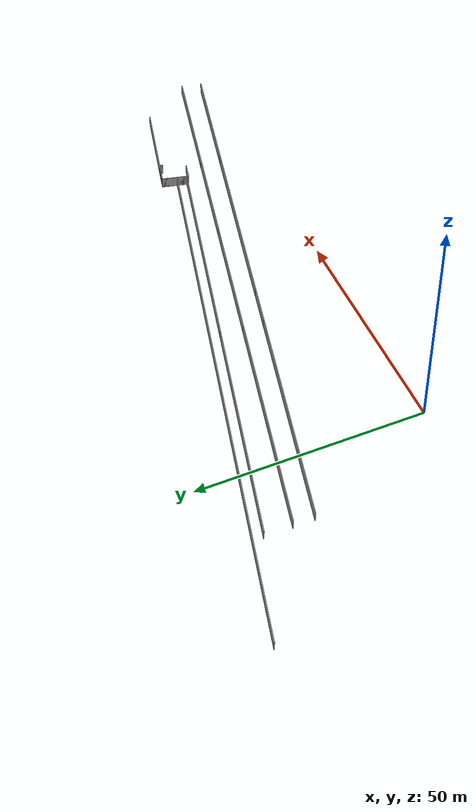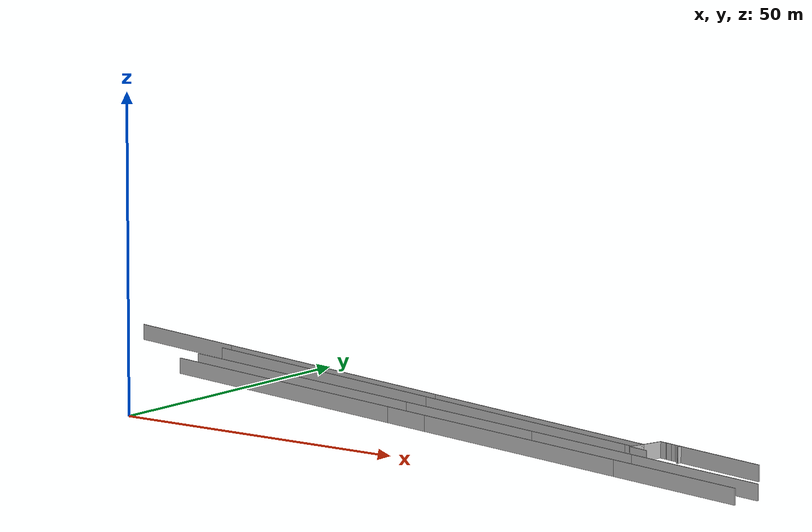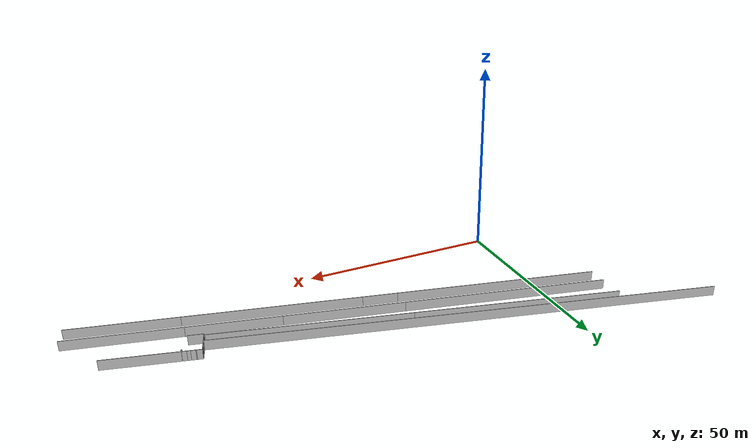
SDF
<?xml version="1.0" ?>
<sdf version="1.6">
  <model name="sps_0403">
    <pose frame="">0 0 0 0 -0 0</pose>
    <static>1</static>
    <self_collide>0</self_collide>
    <allow_auto_disable>0</allow_auto_disable>
    <link name="Wall6">
      <kinematic>0</kinematic>
      <gravity>1</gravity>
      <self_collide>0</self_collide>
      <collision name="collision">
        <geometry>
          <box>
            <size>51.584 0.15 2.5</size>
          </box>
        </geometry>
        <pose frame="">0 0 0 0 -0 0</pose>
      </collision>
      <visual name="visual">
        <geometry>
          <box>
            <size>51.584 0.15 2.5</size>
          </box>
        </geometry>
        <pose frame="">0 0 0 0 -0 0</pose>
        <cast_shadows>1</cast_shadows>
        <transparency>0.0</transparency>
      </visual>
      <pose frame="">9.46944 38.2738 1.25 0 0 -0.248456</pose>
    </link>
    <link name="Wall7">
      <kinematic>0</kinematic>
      <gravity>1</gravity>
      <self_collide>0</self_collide>
      <collision name="collision">
        <geometry>
          <box>
            <size>48.622 0.15 2.5</size>
          </box>
        </geometry>
        <pose frame="">0 0 0 0 -0 0</pose>
      </collision>
      <visual name="visual">
        <geometry>
          <box>
            <size>48.622 0.15 2.5</size>
          </box>
        </geometry>
        <pose frame="">0 0 0 0 -0 0</pose>
        <cast_shadows>1</cast_shadows>
        <transparency>0.0</transparency>
      </visual>
      <pose frame="">58.034 25.9531 1.25 0 0 -0.248456</pose>
    </link>
    <link name="Wall101">
      <kinematic>0</kinematic>
      <gravity>1</gravity>
      <self_collide>0</self_collide>
      <collision name="collision">
        <geometry>
          <box>
            <size>0.400058 0.15 2.5</size>
          </box>
        </geometry>
        <pose frame="">0 0 0 0 -0 0</pose>
      </collision>
      <visual name="visual">
        <geometry>
          <box>
            <size>0.400058 0.15 2.5</size>
          </box>
        </geometry>
        <pose frame="">0 0 0 0 -0 0</pose>
        <cast_shadows>1</cast_shadows>
        <transparency>0.0</transparency>
      </visual>
      <pose frame="">81.0085 17.6482 1.25 0 0 -1.81881</pose>
    </link>
    <link name="Wall103">
      <kinematic>0</kinematic>
      <gravity>1</gravity>
      <self_collide>0</self_collide>
      <collision name="collision">
        <geometry>
          <box>
            <size>3.6198 0.15 2.5</size>
          </box>
        </geometry>
        <pose frame="">0 0 0 0 -0 0</pose>
      </collision>
      <visual name="visual">
        <geometry>
          <box>
            <size>3.6198 0.15 2.5</size>
          </box>
        </geometry>
        <pose frame="">0 0 0 0 -0 0</pose>
        <cast_shadows>1</cast_shadows>
        <transparency>0.0</transparency>
      </visual>
      <pose frame="">82.7144 17.0119 1.25 0 0 -0.246916</pose>
    </link>
    <link name="Wall176">
      <kinematic>0</kinematic>
      <gravity>1</gravity>
      <self_collide>0</self_collide>
      <collision name="collision">
        <geometry>
          <box>
            <size>0.650131 0.15 2.5</size>
          </box>
        </geometry>
        <pose frame="">0 0 0 0 -0 0</pose>
      </collision>
      <visual name="visual">
        <geometry>
          <box>
            <size>0.650131 0.15 2.5</size>
          </box>
        </geometry>
        <pose frame="">0 0 0 0 -0 0</pose>
        <cast_shadows>1</cast_shadows>
        <transparency>0.0</transparency>
      </visual>
      <pose frame="">86.6057 21.826 1.25 0 0 -1.81912</pose>
    </link>
    <link name="Wall182">
      <kinematic>0</kinematic>
      <gravity>1</gravity>
      <self_collide>0</self_collide>
      <collision name="collision">
        <geometry>
          <box>
            <size>18.3931 0.15 2.5</size>
          </box>
        </geometry>
        <pose frame="">0 0 0 0 -0 0</pose>
      </collision>
      <visual name="visual">
        <geometry>
          <box>
            <size>18.3931 0.15 2.5</size>
          </box>
        </geometry>
        <pose frame="">0 0 0 0 -0 0</pose>
        <cast_shadows>1</cast_shadows>
        <transparency>0.0</transparency>
      </visual>
      <pose frame="">94.5342 20.1522 1.25 0 -0 2.89341</pose>
    </link>
    <link name="Wall334">
      <kinematic>0</kinematic>
      <gravity>1</gravity>
      <self_collide>0</self_collide>
      <collision name="collision">
        <geometry>
          <box>
            <size>3.34943 0.15 2.5</size>
          </box>
        </geometry>
        <pose frame="">0 0 0 0 -0 0</pose>
      </collision>
      <visual name="visual">
        <geometry>
          <box>
            <size>3.34943 0.15 2.5</size>
          </box>
        </geometry>
        <pose frame="">0 0 0 0 -0 0</pose>
        <cast_shadows>1</cast_shadows>
        <transparency>0.0</transparency>
      </visual>
      <pose frame="">82.0095 21.5984 1.25 0 0 -1.81873</pose>
    </link>
    <link name="Wall335">
      <kinematic>0</kinematic>
      <gravity>1</gravity>
      <self_collide>0</self_collide>
      <collision name="collision">
        <geometry>
          <box>
            <size>0.149912 0.15 2.5</size>
          </box>
        </geometry>
        <pose frame="">0 0 0 0 -0 0</pose>
      </collision>
      <visual name="visual">
        <geometry>
          <box>
            <size>0.149912 0.15 2.5</size>
          </box>
        </geometry>
        <pose frame="">0 0 0 0 -0 0</pose>
        <cast_shadows>1</cast_shadows>
        <transparency>0.0</transparency>
      </visual>
      <pose frame="">86.5985 21.4926 1.25 0 -0 2.89523</pose>
    </link>
    <link name="Wall336">
      <kinematic>0</kinematic>
      <gravity>1</gravity>
      <self_collide>0</self_collide>
      <collision name="collision">
        <geometry>
          <box>
            <size>0.649731 0.15 2.5</size>
          </box>
        </geometry>
        <pose frame="">0 0 0 0 -0 0</pose>
      </collision>
      <visual name="visual">
        <geometry>
          <box>
            <size>0.649731 0.15 2.5</size>
          </box>
        </geometry>
        <pose frame="">0 0 0 0 -0 0</pose>
        <cast_shadows>1</cast_shadows>
        <transparency>0.0</transparency>
      </visual>
      <pose frame="">86.7512 21.7892 1.25 0 0 -1.81937</pose>
    </link>
    <link name="Wall403">
      <kinematic>0</kinematic>
      <gravity>1</gravity>
      <self_collide>0</self_collide>
      <collision name="collision">
        <geometry>
          <box>
            <size>0.208675 0.15 2.5</size>
          </box>
        </geometry>
        <pose frame="">0 0 0 0 -0 0</pose>
      </collision>
      <visual name="visual">
        <geometry>
          <box>
            <size>0.208675 0.15 2.5</size>
          </box>
        </geometry>
        <pose frame="">0 0 0 0 -0 0</pose>
        <cast_shadows>1</cast_shadows>
        <transparency>0.0</transparency>
      </visual>
      <pose frame="">80.9565 17.8676 1.25 0 -0 2.89487</pose>
    </link>
    <link name="Wall404">
      <kinematic>0</kinematic>
      <gravity>1</gravity>
      <self_collide>0</self_collide>
      <collision name="collision">
        <geometry>
          <box>
            <size>47.8344 0.15 2.5</size>
          </box>
        </geometry>
        <pose frame="">0 0 0 0 -0 0</pose>
      </collision>
      <visual name="visual">
        <geometry>
          <box>
            <size>47.8344 0.15 2.5</size>
          </box>
        </geometry>
        <pose frame="">0 0 0 0 -0 0</pose>
        <cast_shadows>1</cast_shadows>
        <transparency>0.0</transparency>
      </visual>
      <pose frame="">57.6624 23.7343 1.25 0 -0 2.89487</pose>
    </link>
    <link name="Wall405">
      <kinematic>0</kinematic>
      <gravity>1</gravity>
      <self_collide>0</self_collide>
      <collision name="collision">
        <geometry>
          <box>
            <size>51.5614 0.15 2.5</size>
          </box>
        </geometry>
        <pose frame="">0 0 0 0 -0 0</pose>
      </collision>
      <visual name="visual">
        <geometry>
          <box>
            <size>51.5614 0.15 2.5</size>
          </box>
        </geometry>
        <pose frame="">0 0 0 0 -0 0</pose>
        <cast_shadows>1</cast_shadows>
        <transparency>0.0</transparency>
      </visual>
      <pose frame="">9.46944 35.8719 1.25 0 -0 2.89487</pose>
    </link>
    <link name="Wall411">
      <kinematic>0</kinematic>
      <gravity>1</gravity>
      <self_collide>0</self_collide>
      <collision name="collision">
        <geometry>
          <box>
            <size>25.945 0.15 2.5</size>
          </box>
        </geometry>
        <pose frame="">0 0 0 0 -0 0</pose>
      </collision>
      <visual name="visual">
        <geometry>
          <box>
            <size>25.945 0.15 2.5</size>
          </box>
        </geometry>
        <pose frame="">0 0 0 0 -0 0</pose>
        <cast_shadows>1</cast_shadows>
        <transparency>0.0</transparency>
      </visual>
      <pose frame="">97.1055 5.29008 1.25 0 -0 2.91334</pose>
    </link>
    <link name="Wall412">
      <kinematic>0</kinematic>
      <gravity>1</gravity>
      <self_collide>0</self_collide>
      <collision name="collision">
        <geometry>
          <box>
            <size>42.7245 0.15 2.5</size>
          </box>
        </geometry>
        <pose frame="">0 0 0 0 -0 0</pose>
      </collision>
      <visual name="visual">
        <geometry>
          <box>
            <size>42.7245 0.15 2.5</size>
          </box>
        </geometry>
        <pose frame="">0 0 0 0 -0 0</pose>
        <cast_shadows>1</cast_shadows>
        <transparency>0.0</transparency>
      </visual>
      <pose frame="">63.6613 13.0593 1.25 0 -0 2.91334</pose>
    </link>
    <link name="Wall413">
      <kinematic>0</kinematic>
      <gravity>1</gravity>
      <self_collide>0</self_collide>
      <collision name="collision">
        <geometry>
          <box>
            <size>8.60691 0.15 2.5</size>
          </box>
        </geometry>
        <pose frame="">0 0 0 0 -0 0</pose>
      </collision>
      <visual name="visual">
        <geometry>
          <box>
            <size>8.60691 0.15 2.5</size>
          </box>
        </geometry>
        <pose frame="">0 0 0 0 -0 0</pose>
        <cast_shadows>1</cast_shadows>
        <transparency>0.0</transparency>
      </visual>
      <pose frame="">38.6613 18.8669 1.25 0 -0 2.91334</pose>
    </link>
    <link name="Wall414">
      <kinematic>0</kinematic>
      <gravity>1</gravity>
      <self_collide>0</self_collide>
      <collision name="collision">
        <geometry>
          <box>
            <size>51.3314 0.15 2.5</size>
          </box>
        </geometry>
        <pose frame="">0 0 0 0 -0 0</pose>
      </collision>
      <visual name="visual">
        <geometry>
          <box>
            <size>51.3314 0.15 2.5</size>
          </box>
        </geometry>
        <pose frame="">0 0 0 0 -0 0</pose>
        <cast_shadows>1</cast_shadows>
        <transparency>0.0</transparency>
      </visual>
      <pose frame="">9.46944 25.6482 1.25 0 -0 2.91334</pose>
    </link>
    <link name="Wall416">
      <kinematic>0</kinematic>
      <gravity>1</gravity>
      <self_collide>0</self_collide>
      <collision name="collision">
        <geometry>
          <box>
            <size>26.9962 0.15 2.5</size>
          </box>
        </geometry>
        <pose frame="">0 0 0 0 -0 0</pose>
      </collision>
      <visual name="visual">
        <geometry>
          <box>
            <size>26.9962 0.15 2.5</size>
          </box>
        </geometry>
        <pose frame="">0 0 0 0 -0 0</pose>
        <cast_shadows>1</cast_shadows>
        <transparency>0.0</transparency>
      </visual>
      <pose frame="">97.6175 9.81626 1.25 0 -0 2.91334</pose>
    </link>
    <link name="Wall417">
      <kinematic>0</kinematic>
      <gravity>1</gravity>
      <self_collide>0</self_collide>
      <collision name="collision">
        <geometry>
          <box>
            <size>22.1959 0.15 2.5</size>
          </box>
        </geometry>
        <pose frame="">0 0 0 0 -0 0</pose>
      </collision>
      <visual name="visual">
        <geometry>
          <box>
            <size>22.1959 0.15 2.5</size>
          </box>
        </geometry>
        <pose frame="">0 0 0 0 -0 0</pose>
        <cast_shadows>1</cast_shadows>
        <transparency>0.0</transparency>
      </visual>
      <pose frame="">73.6593 15.3818 1.25 0 -0 2.91334</pose>
    </link>
    <link name="Wall418">
      <kinematic>0</kinematic>
      <gravity>1</gravity>
      <self_collide>0</self_collide>
      <collision name="collision">
        <geometry>
          <box>
            <size>29.1355 0.15 2.5</size>
          </box>
        </geometry>
        <pose frame="">0 0 0 0 -0 0</pose>
      </collision>
      <visual name="visual">
        <geometry>
          <box>
            <size>29.1355 0.15 2.5</size>
          </box>
        </geometry>
        <pose frame="">0 0 0 0 -0 0</pose>
        <cast_shadows>1</cast_shadows>
        <transparency>0.0</transparency>
      </visual>
      <pose frame="">48.6593 21.1895 1.25 0 -0 2.91334</pose>
    </link>
    <link name="Wall419">
      <kinematic>0</kinematic>
      <gravity>1</gravity>
      <self_collide>0</self_collide>
      <collision name="collision">
        <geometry>
          <box>
            <size>51.3314 0.15 2.5</size>
          </box>
        </geometry>
        <pose frame="">0 0 0 0 -0 0</pose>
      </collision>
      <visual name="visual">
        <geometry>
          <box>
            <size>51.3314 0.15 2.5</size>
          </box>
        </geometry>
        <pose frame="">0 0 0 0 -0 0</pose>
        <cast_shadows>1</cast_shadows>
        <transparency>0.0</transparency>
      </visual>
      <pose frame="">9.46944 30.2935 1.25 0 -0 2.91334</pose>
    </link>
    <link name="Wall1397">
      <kinematic>0</kinematic>
      <gravity>1</gravity>
      <self_collide>0</self_collide>
      <collision name="collision">
        <geometry>
          <box>
            <size>0.400058 0.15 2.5</size>
          </box>
        </geometry>
        <pose frame="">0 0 0 0 -0 0</pose>
      </collision>
      <visual name="visual">
        <geometry>
          <box>
            <size>0.400058 0.15 2.5</size>
          </box>
        </geometry>
        <pose frame="">0 0 0 0 -0 0</pose>
        <cast_shadows>1</cast_shadows>
        <transparency>0.0</transparency>
      </visual>
      <pose frame="">81.0085 17.6482 1.25 0 -0 1.32278</pose>
    </link>
    <link name="Wall1398">
      <kinematic>0</kinematic>
      <gravity>1</gravity>
      <self_collide>0</self_collide>
      <collision name="collision">
        <geometry>
          <box>
            <size>2.20026 0.15 2.5</size>
          </box>
        </geometry>
        <pose frame="">0 0 0 0 -0 0</pose>
      </collision>
      <visual name="visual">
        <geometry>
          <box>
            <size>2.20026 0.15 2.5</size>
          </box>
        </geometry>
        <pose frame="">0 0 0 0 -0 0</pose>
        <cast_shadows>1</cast_shadows>
        <transparency>0.0</transparency>
      </visual>
      <pose frame="">81.3281 18.9085 1.25 0 -0 1.32245</pose>
    </link>
    <link name="Wall1399">
      <kinematic>0</kinematic>
      <gravity>1</gravity>
      <self_collide>0</self_collide>
      <collision name="collision">
        <geometry>
          <box>
            <size>3.34943 0.15 2.5</size>
          </box>
        </geometry>
        <pose frame="">0 0 0 0 -0 0</pose>
      </collision>
      <visual name="visual">
        <geometry>
          <box>
            <size>3.34943 0.15 2.5</size>
          </box>
        </geometry>
        <pose frame="">0 0 0 0 -0 0</pose>
        <cast_shadows>1</cast_shadows>
        <transparency>0.0</transparency>
      </visual>
      <pose frame="">82.0095 21.5984 1.25 0 -0 1.32286</pose>
    </link>
    <link name="Wall1400">
      <kinematic>0</kinematic>
      <gravity>1</gravity>
      <self_collide>0</self_collide>
      <collision name="collision">
        <geometry>
          <box>
            <size>1.24984 0.15 2.5</size>
          </box>
        </geometry>
        <pose frame="">0 0 0 0 -0 0</pose>
      </collision>
      <visual name="visual">
        <geometry>
          <box>
            <size>1.24984 0.15 2.5</size>
          </box>
        </geometry>
        <pose frame="">0 0 0 0 -0 0</pose>
        <cast_shadows>1</cast_shadows>
        <transparency>0.0</transparency>
      </visual>
      <pose frame="">83.0262 23.0685 1.25 0 0 -0.247975</pose>
    </link>
    <link name="Wall1401">
      <kinematic>0</kinematic>
      <gravity>1</gravity>
      <self_collide>0</self_collide>
      <collision name="collision">
        <geometry>
          <box>
            <size>0.150269 0.15 2.5</size>
          </box>
        </geometry>
        <pose frame="">0 0 0 0 -0 0</pose>
      </collision>
      <visual name="visual">
        <geometry>
          <box>
            <size>0.150269 0.15 2.5</size>
          </box>
        </geometry>
        <pose frame="">0 0 0 0 -0 0</pose>
        <cast_shadows>1</cast_shadows>
        <transparency>0.0</transparency>
      </visual>
      <pose frame="">83.7049 22.8966 1.25 0 0 -0.249116</pose>
    </link>
    <link name="Wall1402">
      <kinematic>0</kinematic>
      <gravity>1</gravity>
      <self_collide>0</self_collide>
      <collision name="collision">
        <geometry>
          <box>
            <size>1.09987 0.15 2.5</size>
          </box>
        </geometry>
        <pose frame="">0 0 0 0 -0 0</pose>
      </collision>
      <visual name="visual">
        <geometry>
          <box>
            <size>1.09987 0.15 2.5</size>
          </box>
        </geometry>
        <pose frame="">0 0 0 0 -0 0</pose>
        <cast_shadows>1</cast_shadows>
        <transparency>0.0</transparency>
      </visual>
      <pose frame="">84.3108 22.743 1.25 0 0 -0.248209</pose>
    </link>
    <link name="Wall1403">
      <kinematic>0</kinematic>
      <gravity>1</gravity>
      <self_collide>0</self_collide>
      <collision name="collision">
        <geometry>
          <box>
            <size>0.800162 0.15 2.5</size>
          </box>
        </geometry>
        <pose frame="">0 0 0 0 -0 0</pose>
      </collision>
      <visual name="visual">
        <geometry>
          <box>
            <size>0.800162 0.15 2.5</size>
          </box>
        </geometry>
        <pose frame="">0 0 0 0 -0 0</pose>
        <cast_shadows>1</cast_shadows>
        <transparency>0.0</transparency>
      </visual>
      <pose frame="">85.2317 22.5096 1.25 0 0 -0.248235</pose>
    </link>
    <link name="Wall1404">
      <kinematic>0</kinematic>
      <gravity>1</gravity>
      <self_collide>0</self_collide>
      <collision name="collision">
        <geometry>
          <box>
            <size>1.09987 0.15 2.5</size>
          </box>
        </geometry>
        <pose frame="">0 0 0 0 -0 0</pose>
      </collision>
      <visual name="visual">
        <geometry>
          <box>
            <size>1.09987 0.15 2.5</size>
          </box>
        </geometry>
        <pose frame="">0 0 0 0 -0 0</pose>
        <cast_shadows>1</cast_shadows>
        <transparency>0.0</transparency>
      </visual>
      <pose frame="">86.1525 22.2762 1.25 0 0 -0.248209</pose>
    </link>
    <link name="Wall1405">
      <kinematic>0</kinematic>
      <gravity>1</gravity>
      <self_collide>0</self_collide>
      <collision name="collision">
        <geometry>
          <box>
            <size>0.150076 0.15 2.5</size>
          </box>
        </geometry>
        <pose frame="">0 0 0 0 -0 0</pose>
      </collision>
      <visual name="visual">
        <geometry>
          <box>
            <size>0.150076 0.15 2.5</size>
          </box>
        </geometry>
        <pose frame="">0 0 0 0 -0 0</pose>
        <cast_shadows>1</cast_shadows>
        <transparency>0.0</transparency>
      </visual>
      <pose frame="">86.7584 22.1226 1.25 0 0 -0.249023</pose>
    </link>
    <link name="Wall1924">
      <kinematic>0</kinematic>
      <gravity>1</gravity>
      <self_collide>0</self_collide>
      <collision name="collision">
        <geometry>
          <box>
            <size>123.843 0.15 2.5</size>
          </box>
        </geometry>
        <pose frame="">0 0 0 0 -0 0</pose>
      </collision>
      <visual name="visual">
        <geometry>
          <box>
            <size>123.843 0.15 2.5</size>
          </box>
        </geometry>
        <pose frame="">0 0 0 0 -0 0</pose>
        <cast_shadows>1</cast_shadows>
        <transparency>0.0</transparency>
      </visual>
      <pose frame="">21.5783 35.2019 1.25 0 0 -0.248456</pose>
    </link>
    <link name="Wall1925">
      <kinematic>0</kinematic>
      <gravity>1</gravity>
      <self_collide>0</self_collide>
      <collision name="collision">
        <geometry>
          <box>
            <size>2.20026 0.15 2.5</size>
          </box>
        </geometry>
        <pose frame="">0 0 0 0 -0 0</pose>
      </collision>
      <visual name="visual">
        <geometry>
          <box>
            <size>2.20026 0.15 2.5</size>
          </box>
        </geometry>
        <pose frame="">0 0 0 0 -0 0</pose>
        <cast_shadows>1</cast_shadows>
        <transparency>0.0</transparency>
      </visual>
      <pose frame="">81.3281 18.9085 1.25 0 0 -1.81915</pose>
    </link>
    <link name="Wall1926">
      <kinematic>0</kinematic>
      <gravity>1</gravity>
      <self_collide>0</self_collide>
      <collision name="collision">
        <geometry>
          <box>
            <size>1.56993 0.15 2.5</size>
          </box>
        </geometry>
        <pose frame="">0 0 0 0 -0 0</pose>
      </collision>
      <visual name="visual">
        <geometry>
          <box>
            <size>1.56993 0.15 2.5</size>
          </box>
        </geometry>
        <pose frame="">0 0 0 0 -0 0</pose>
        <cast_shadows>1</cast_shadows>
        <transparency>0.0</transparency>
      </visual>
      <pose frame="">80.2964 18.0338 1.25 0 -0 2.89491</pose>
    </link>
  </model>
</sdf>
